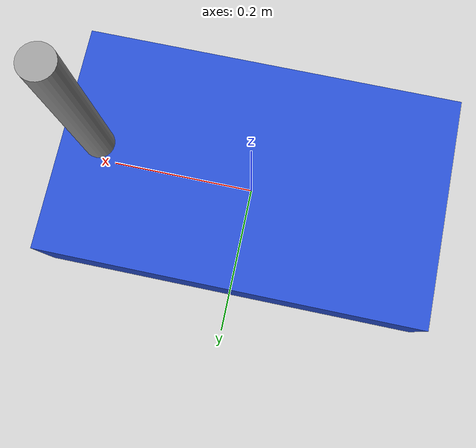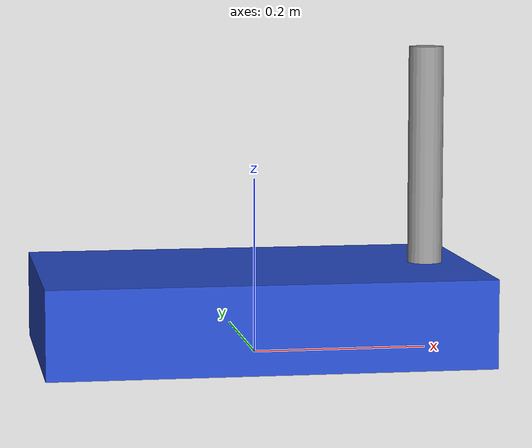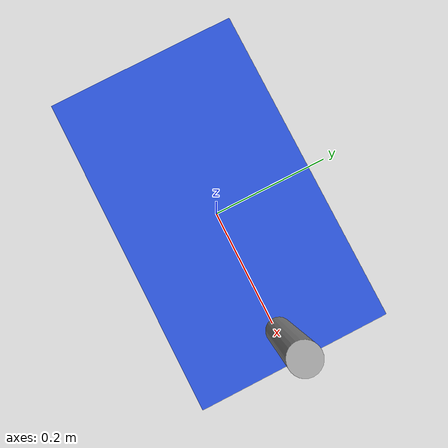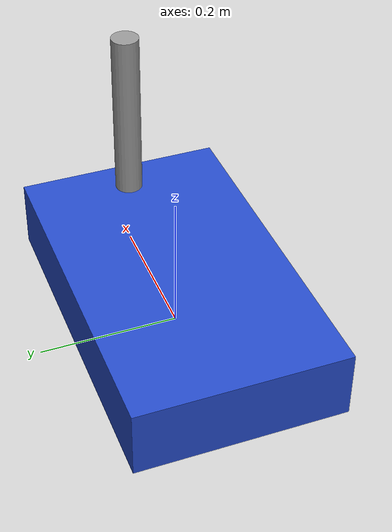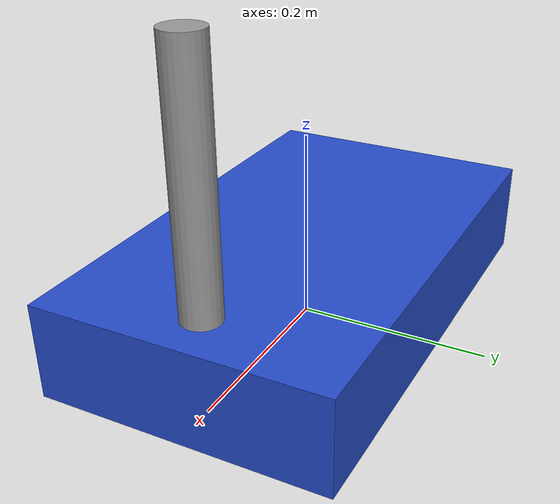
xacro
<?xml version="1.0"?>
<robot xmlns:xacro="http://www.ros.org/wiki/xacro">
    <link name="base_link">
        <visual>
            <geometry>
                <box size="0.5 0.3 0.1"/>
            </geometry>
            <origin rpy="0 0 0" xyz="0 0 0.05"/>
            <material name="blue"/>
        </visual>
        <collision>
            <geometry>
                <box size="0.5 0.3 0.1"/>
            </geometry>
            <origin rpy="0 0 0" xyz="0 0 0.05"/>
        </collision>
        <inertial>
            <mass value="10.0"/>
            <inertia ixx="0.1" ixy="0" ixz="0" iyy="0.1" iyz="0" izz="0.1"/>
        </inertial>
        <!-- Camera Pillar -->
        <visual>
            <geometry>
                <cylinder radius="0.02" length="0.3"/>
            </geometry>
            <origin rpy="0 0 0" xyz="0.2 0 0.2"/>
            <material name="grey"/>
        </visual>
        <collision>
            <geometry>
                <cylinder radius="0.02" length="0.3"/>
            </geometry>
            <origin rpy="0 0 0" xyz="0.2 0 0.2"/>
        </collision>
    </link>
</robot>
